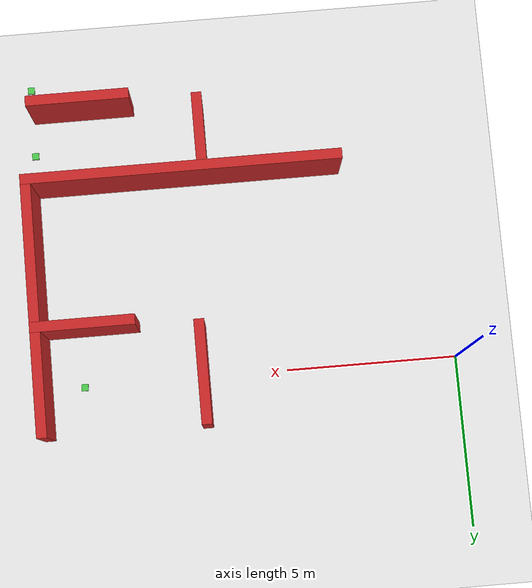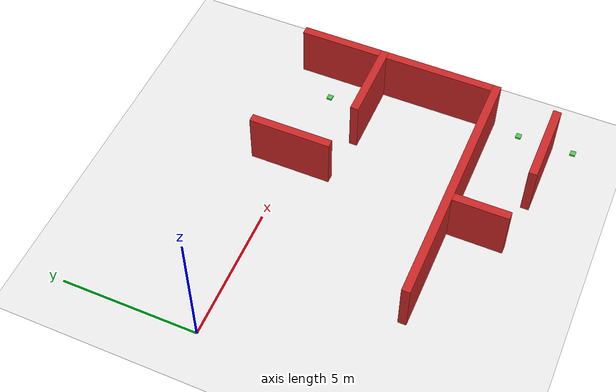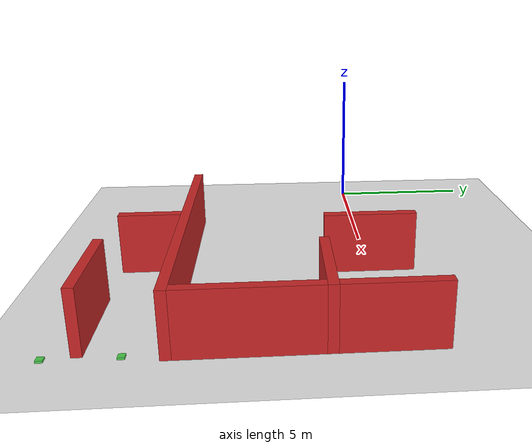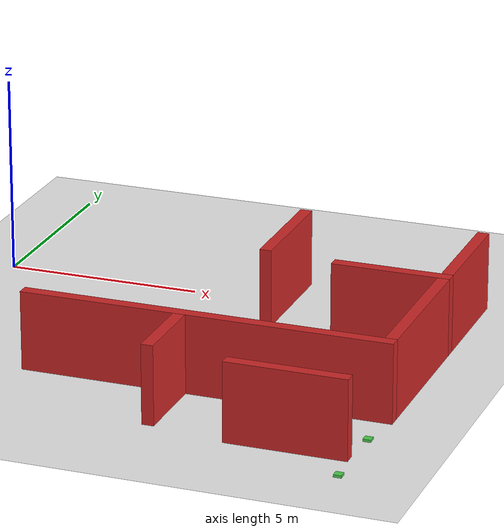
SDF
<sdf version="1.7">
 <world name="default">
  <model name="ground_plane">
   <static>1</static>
   <link name="link">
    <collision name="collision">
     <geometry><plane><normal>0 0 1</normal><size>100 100</size></plane></geometry>
     <surface>
      <contact><collide_bitmask>65535</collide_bitmask></contact>
      <friction><ode><mu>100</mu><mu2>50</mu2></ode></friction>
     </surface>
    </collision>
    <visual name="visual">
     <cast_shadows>0</cast_shadows>
     <geometry><plane><normal>0 0 1</normal><size>100 100</size></plane></geometry>
     <material>
      <script><uri>file://media/materials/scripts/gazebo.material</uri><name>Gazebo/White</name></script>
     </material>
    </visual>
   </link>
  </model>
  <model name="unit_box_clone_0">
   <link name="link">
    <inertial>
     <mass>1</mass>
     <inertia>
      <ixx>0.166667</ixx>
      <ixy>0</ixy>
      <ixz>0</ixz>
      <iyy>0.166667</iyy>
      <iyz>0</iyz>
      <izz>0.166667</izz>
     </inertia>
    </inertial>
    <visual name="visual">
     <geometry><box><size>0.3 3 2</size></box></geometry>
     <material>
      <script><name>Gazebo/Red</name><uri>file://media/materials/scripts/gazebo.material</uri></script>
      <shader type="pixel"><normal_map>__default__</normal_map></shader>
      <ambient>1 0 0 1</ambient>
      <diffuse>1 0 0 1</diffuse>
      <specular>0.1 0.1 0.1 1</specular>
      <emissive>0 0 0 1</emissive>
     </material>
    </visual>
    <collision name="collision">
     <geometry><box><size>0.3 3 2</size></box></geometry>
     <surface>
      <friction>
       <ode><mu>1</mu><mu2>1</mu2><fdir1>0 0 0</fdir1><slip1>0</slip1><slip2>0</slip2></ode>
       <torsional>
        <coefficient>1</coefficient>
        <patch_radius>0</patch_radius>
        <surface_radius>0</surface_radius>
        <use_patch_radius>1</use_patch_radius>
        <ode><slip>0</slip></ode>
       </torsional>
      </friction>
      <bounce><restitution_coefficient>0</restitution_coefficient><threshold>1e+06</threshold></bounce>
      <contact>
       <collide_without_contact>0</collide_without_contact>
       <collide_without_contact_bitmask>1</collide_without_contact_bitmask>
       <collide_bitmask>1</collide_bitmask>
       <ode>
        <soft_cfm>0</soft_cfm>
        <soft_erp>0.2</soft_erp>
        <kp>1e+13</kp>
        <kd>1</kd>
        <max_vel>0.01</max_vel>
        <min_depth>0</min_depth>
       </ode>
       <bullet>
        <split_impulse>1</split_impulse>
        <split_impulse_penetration_threshold>-0.01</split_impulse_penetration_threshold>
        <soft_cfm>0</soft_cfm>
        <soft_erp>0.2</soft_erp>
        <kp>1e+13</kp>
        <kd>1</kd>
       </bullet>
      </contact>
     </surface>
    </collision>
   </link>
   <static>1</static>
   <pose>7.45 0 1 1e-05 -0 0</pose>
  </model>
  <model name="unit_box_clone_0_clone">
   <link name="link">
    <inertial>
     <mass>1</mass>
     <inertia>
      <ixx>0.166667</ixx>
      <ixy>0</ixy>
      <ixz>0</ixz>
      <iyy>0.166667</iyy>
      <iyz>0</iyz>
      <izz>0.166667</izz>
     </inertia>
    </inertial>
    <visual name="visual">
     <geometry><box><size>0.3 3 2</size></box></geometry>
     <material>
      <script><name>Gazebo/Red</name><uri>file://media/materials/scripts/gazebo.material</uri></script>
      <shader type="pixel"><normal_map>__default__</normal_map></shader>
      <ambient>1 0 0 1</ambient>
      <diffuse>1 0 0 1</diffuse>
      <specular>0.1 0.1 0.1 1</specular>
      <emissive>0 0 0 1</emissive>
     </material>
    </visual>
    <collision name="collision">
     <geometry><box><size>0.3 3 2</size></box></geometry>
     <surface>
      <friction>
       <ode><mu>1</mu><mu2>1</mu2><fdir1>0 0 0</fdir1><slip1>0</slip1><slip2>0</slip2></ode>
       <torsional>
        <coefficient>1</coefficient>
        <patch_radius>0</patch_radius>
        <surface_radius>0</surface_radius>
        <use_patch_radius>1</use_patch_radius>
        <ode><slip>0</slip></ode>
       </torsional>
      </friction>
      <bounce><restitution_coefficient>0</restitution_coefficient><threshold>1e+06</threshold></bounce>
      <contact>
       <collide_without_contact>0</collide_without_contact>
       <collide_without_contact_bitmask>1</collide_without_contact_bitmask>
       <collide_bitmask>1</collide_bitmask>
       <ode>
        <soft_cfm>0</soft_cfm>
        <soft_erp>0.2</soft_erp>
        <kp>1e+13</kp>
        <kd>1</kd>
        <max_vel>0.01</max_vel>
        <min_depth>0</min_depth>
       </ode>
       <bullet>
        <split_impulse>1</split_impulse>
        <split_impulse_penetration_threshold>-0.01</split_impulse_penetration_threshold>
        <soft_cfm>0</soft_cfm>
        <soft_erp>0.2</soft_erp>
        <kp>1e+13</kp>
        <kd>1</kd>
       </bullet>
      </contact>
     </surface>
    </collision>
   </link>
   <static>1</static>
   <pose>12.1 0 1 1e-05 -0 0</pose>
  </model>
  <model name="unit_box_clone_1_clone">
   <link name="link">
    <inertial>
     <mass>1</mass>
     <inertia>
      <ixx>0.166667</ixx>
      <ixy>0</ixy>
      <ixz>0</ixz>
      <iyy>0.166667</iyy>
      <iyz>0</iyz>
      <izz>0.166667</izz>
     </inertia>
    </inertial>
    <visual name="visual">
     <geometry><box><size>0.3 4 2</size></box></geometry>
     <material>
      <script><name>Gazebo/Red</name><uri>file://media/materials/scripts/gazebo.material</uri></script>
      <shader type="pixel"><normal_map>__default__</normal_map></shader>
      <ambient>1 0 0 1</ambient>
      <diffuse>1 0 0 1</diffuse>
      <specular>0.1 0.1 0.1 1</specular>
      <emissive>0 0 0 1</emissive>
     </material>
    </visual>
    <collision name="collision">
     <geometry><box><size>0.3 4 2</size></box></geometry>
     <surface>
      <friction>
       <ode><mu>1</mu><mu2>1</mu2><fdir1>0 0 0</fdir1><slip1>0</slip1><slip2>0</slip2></ode>
       <torsional>
        <coefficient>1</coefficient>
        <patch_radius>0</patch_radius>
        <surface_radius>0</surface_radius>
        <use_patch_radius>1</use_patch_radius>
        <ode><slip>0</slip></ode>
       </torsional>
      </friction>
      <bounce><restitution_coefficient>0</restitution_coefficient><threshold>1e+06</threshold></bounce>
      <contact>
       <collide_without_contact>0</collide_without_contact>
       <collide_without_contact_bitmask>1</collide_without_contact_bitmask>
       <collide_bitmask>1</collide_bitmask>
       <ode>
        <soft_cfm>0</soft_cfm>
        <soft_erp>0.2</soft_erp>
        <kp>1e+13</kp>
        <kd>1</kd>
        <max_vel>0.01</max_vel>
        <min_depth>0</min_depth>
       </ode>
       <bullet>
        <split_impulse>1</split_impulse>
        <split_impulse_penetration_threshold>-0.01</split_impulse_penetration_threshold>
        <soft_cfm>0</soft_cfm>
        <soft_erp>0.2</soft_erp>
        <kp>1e+13</kp>
        <kd>1</kd>
       </bullet>
      </contact>
     </surface>
    </collision>
   </link>
   <static>1</static>
   <pose>12.1 -3.8 1 1e-05 -0 0</pose>
  </model>
  <model name="unit_box_clone_clone_clone_0_clone">
   <link name="link">
    <inertial>
     <mass>1</mass>
     <inertia>
      <ixx>0.166667</ixx>
      <ixy>0</ixy>
      <ixz>0</ixz>
      <iyy>0.166667</iyy>
      <iyz>0</iyz>
      <izz>0.166667</izz>
     </inertia>
    </inertial>
    <visual name="visual">
     <geometry><box><size>3 0.3 2</size></box></geometry>
     <material>
      <script><name>Gazebo/Red</name><uri>file://media/materials/scripts/gazebo.material</uri></script>
      <shader type="pixel"><normal_map>__default__</normal_map></shader>
      <ambient>1 0 0 1</ambient>
      <diffuse>1 0 0 1</diffuse>
      <specular>0.1 0.1 0.1 1</specular>
      <emissive>0 0 0 1</emissive>
     </material>
    </visual>
    <collision name="collision">
     <geometry><box><size>3 0.3 2</size></box></geometry>
     <surface>
      <friction>
       <ode><mu>1</mu><mu2>1</mu2><fdir1>0 0 0</fdir1><slip1>0</slip1><slip2>0</slip2></ode>
       <torsional>
        <coefficient>1</coefficient>
        <patch_radius>0</patch_radius>
        <surface_radius>0</surface_radius>
        <use_patch_radius>1</use_patch_radius>
        <ode><slip>0</slip></ode>
       </torsional>
      </friction>
      <bounce><restitution_coefficient>0</restitution_coefficient><threshold>1e+06</threshold></bounce>
      <contact>
       <collide_without_contact>0</collide_without_contact>
       <collide_without_contact_bitmask>1</collide_without_contact_bitmask>
       <collide_bitmask>1</collide_bitmask>
       <ode>
        <soft_cfm>0</soft_cfm>
        <soft_erp>0.2</soft_erp>
        <kp>1e+13</kp>
        <kd>1</kd>
        <max_vel>0.01</max_vel>
        <min_depth>0</min_depth>
       </ode>
       <bullet>
        <split_impulse>1</split_impulse>
        <split_impulse_penetration_threshold>-0.01</split_impulse_penetration_threshold>
        <soft_cfm>0</soft_cfm>
        <soft_erp>0.2</soft_erp>
        <kp>1e+13</kp>
        <kd>1</kd>
       </bullet>
      </contact>
     </surface>
    </collision>
   </link>
   <static>1</static>
   <pose>10.45 -8.25 1 0 -0 0</pose>
  </model>
  <model name="unit_box_clone_1_clone_clone_clone_0">
   <link name="link">
    <inertial>
     <mass>1</mass>
     <inertia>
      <ixx>0.166667</ixx>
      <ixy>0</ixy>
      <ixz>0</ixz>
      <iyy>0.166667</iyy>
      <iyz>0</iyz>
      <izz>0.166667</izz>
     </inertia>
    </inertial>
    <visual name="visual">
     <geometry><box><size>0.3 2 2</size></box></geometry>
     <material>
      <script><name>Gazebo/Red</name><uri>file://media/materials/scripts/gazebo.material</uri></script>
      <shader type="pixel"><normal_map>__default__</normal_map></shader>
      <ambient>1 0 0 1</ambient>
      <diffuse>1 0 0 1</diffuse>
      <specular>0.1 0.1 0.1 1</specular>
      <emissive>0 0 0 1</emissive>
     </material>
    </visual>
    <collision name="collision">
     <geometry><box><size>0.3 2 2</size></box></geometry>
     <surface>
      <friction>
       <ode><mu>1</mu><mu2>1</mu2><fdir1>0 0 0</fdir1><slip1>0</slip1><slip2>0</slip2></ode>
       <torsional>
        <coefficient>1</coefficient>
        <patch_radius>0</patch_radius>
        <surface_radius>0</surface_radius>
        <use_patch_radius>1</use_patch_radius>
        <ode><slip>0</slip></ode>
       </torsional>
      </friction>
      <bounce><restitution_coefficient>0</restitution_coefficient><threshold>1e+06</threshold></bounce>
      <contact>
       <collide_without_contact>0</collide_without_contact>
       <collide_without_contact_bitmask>1</collide_without_contact_bitmask>
       <collide_bitmask>1</collide_bitmask>
       <ode>
        <soft_cfm>0</soft_cfm>
        <soft_erp>0.2</soft_erp>
        <kp>1e+13</kp>
        <kd>1</kd>
        <max_vel>0.01</max_vel>
        <min_depth>0</min_depth>
       </ode>
       <bullet>
        <split_impulse>1</split_impulse>
        <split_impulse_penetration_threshold>-0.01</split_impulse_penetration_threshold>
        <soft_cfm>0</soft_cfm>
        <soft_erp>0.2</soft_erp>
        <kp>1e+13</kp>
        <kd>1</kd>
       </bullet>
      </contact>
     </surface>
    </collision>
   </link>
   <static>1</static>
   <pose>7 -7.1 1 1e-05 -0 0</pose>
  </model>
  <model name="unit_box_clone_clone_clone">
   <link name="link">
    <inertial>
     <mass>1</mass>
     <inertia>
      <ixx>0.166667</ixx>
      <ixy>0</ixy>
      <ixz>0</ixz>
      <iyy>0.166667</iyy>
      <iyz>0</iyz>
      <izz>0.166667</izz>
     </inertia>
    </inertial>
    <visual name="visual">
     <geometry><box><size>3 0.3 2</size></box></geometry>
     <material>
      <script><name>Gazebo/Red</name><uri>file://media/materials/scripts/gazebo.material</uri></script>
      <shader type="pixel"><normal_map>__default__</normal_map></shader>
      <ambient>1 0 0 1</ambient>
      <diffuse>1 0 0 1</diffuse>
      <specular>0.1 0.1 0.1 1</specular>
      <emissive>0 0 0 1</emissive>
     </material>
    </visual>
    <collision name="collision">
     <geometry><box><size>3 0.3 2</size></box></geometry>
     <surface>
      <friction>
       <ode><mu>1</mu><mu2>1</mu2><fdir1>0 0 0</fdir1><slip1>0</slip1><slip2>0</slip2></ode>
       <torsional>
        <coefficient>1</coefficient>
        <patch_radius>0</patch_radius>
        <surface_radius>0</surface_radius>
        <use_patch_radius>1</use_patch_radius>
        <ode><slip>0</slip></ode>
       </torsional>
      </friction>
      <bounce><restitution_coefficient>0</restitution_coefficient><threshold>1e+06</threshold></bounce>
      <contact>
       <collide_without_contact>0</collide_without_contact>
       <collide_without_contact_bitmask>1</collide_without_contact_bitmask>
       <collide_bitmask>1</collide_bitmask>
       <ode>
        <soft_cfm>0</soft_cfm>
        <soft_erp>0.2</soft_erp>
        <kp>1e+13</kp>
        <kd>1</kd>
        <max_vel>0.01</max_vel>
        <min_depth>0</min_depth>
       </ode>
       <bullet>
        <split_impulse>1</split_impulse>
        <split_impulse_penetration_threshold>-0.01</split_impulse_penetration_threshold>
        <soft_cfm>0</soft_cfm>
        <soft_erp>0.2</soft_erp>
        <kp>1e+13</kp>
        <kd>1</kd>
       </bullet>
      </contact>
     </surface>
    </collision>
   </link>
   <static>1</static>
   <pose>10.75 -1.65 1 1e-05 -0 0</pose>
  </model>
  <model name="unit_box_0">
   <link name="link">
    <inertial>
     <mass>1</mass>
     <inertia>
      <ixx>0.166667</ixx>
      <ixy>0</ixy>
      <ixz>0</ixz>
      <iyy>0.166667</iyy>
      <iyz>0</iyz>
      <izz>0.166667</izz>
     </inertia>
    </inertial>
    <visual name="visual">
     <geometry><box><size>0.2 0.2 0.1</size></box></geometry>
     <material>
      <script><name>Gazebo/Grey</name><uri>file://media/materials/scripts/gazebo.material</uri></script>
      <shader type="pixel"><normal_map>__default__</normal_map></shader>
      <ambient>0.3 0.8 0.3 1</ambient>
      <diffuse>0.7 0.7 0.7 1</diffuse>
      <specular>0.01 0.01 0.01 1</specular>
      <emissive>0 0 0 1</emissive>
     </material>
     <cast_shadows>0</cast_shadows>
    </visual>
   </link>
   <static>1</static>
   <pose>11 0 0 1e-05 -0 0</pose>
  </model>
  <model name="unit_box_1">
   <link name="link">
    <inertial>
     <mass>1</mass>
     <inertia>
      <ixx>0.166667</ixx>
      <ixy>0</ixy>
      <ixz>0</ixz>
      <iyy>0.166667</iyy>
      <iyz>0</iyz>
      <izz>0.166667</izz>
     </inertia>
    </inertial>
    <visual name="visual">
     <geometry><box><size>0.2 0.2 0.1</size></box></geometry>
     <material>
      <script><name>Gazebo/Grey</name><uri>file://media/materials/scripts/gazebo.material</uri></script>
      <shader type="pixel"><normal_map>__default__</normal_map></shader>
      <ambient>0.3 0.8 0.3 1</ambient>
      <diffuse>0.7 0.7 0.7 1</diffuse>
      <specular>0.01 0.01 0.01 1</specular>
      <emissive>0 0 0 1</emissive>
     </material>
     <cast_shadows>0</cast_shadows>
    </visual>
   </link>
   <static>1</static>
   <pose>12 -7.1 0 1e-05 -0 0</pose>
  </model>
  <model name="unit_box_1_clone">
   <link name="link">
    <inertial>
     <mass>1</mass>
     <inertia>
      <ixx>0.166667</ixx>
      <ixy>0</ixy>
      <ixz>0</ixz>
      <iyy>0.166667</iyy>
      <iyz>0</iyz>
      <izz>0.166667</izz>
     </inertia>
    </inertial>
    <visual name="visual">
     <geometry><box><size>0.2 0.2 0.1</size></box></geometry>
     <material>
      <script><name>Gazebo/Grey</name><uri>file://media/materials/scripts/gazebo.material</uri></script>
      <shader type="pixel"><normal_map>__default__</normal_map></shader>
      <ambient>0.3 0.8 0.3 1</ambient>
      <diffuse>0.7 0.7 0.7 1</diffuse>
      <specular>0.01 0.01 0.01 1</specular>
      <emissive>0 0 0 1</emissive>
     </material>
     <cast_shadows>0</cast_shadows>
    </visual>
   </link>
   <static>1</static>
   <pose>12 -9.15 0 1e-05 -0 0</pose>
  </model>
  <model name="unit_box_clone_clone_0_clone">
   <link name="link">
    <inertial>
     <mass>1</mass>
     <inertia>
      <ixx>0.166667</ixx>
      <ixy>0</ixy>
      <ixz>0</ixz>
      <iyy>0.166667</iyy>
      <iyz>0</iyz>
      <izz>0.166667</izz>
     </inertia>
    </inertial>
    <visual name="visual">
     <geometry><box><size>9.3 0.3 2</size></box></geometry>
     <material>
      <script><name>Gazebo/Red</name><uri>file://media/materials/scripts/gazebo.material</uri></script>
      <shader type="pixel"><normal_map>__default__</normal_map></shader>
      <ambient>1 0 0 1</ambient>
      <diffuse>1 0 0 1</diffuse>
      <specular>0.1 0.1 0.1 1</specular>
      <emissive>0 0 0 1</emissive>
     </material>
    </visual>
    <collision name="collision">
     <geometry><box><size>9.3 0.25 2</size></box></geometry>
     <surface>
      <friction>
       <ode><mu>1</mu><mu2>1</mu2><fdir1>0 0 0</fdir1><slip1>0</slip1><slip2>0</slip2></ode>
       <torsional>
        <coefficient>1</coefficient>
        <patch_radius>0</patch_radius>
        <surface_radius>0</surface_radius>
        <use_patch_radius>1</use_patch_radius>
        <ode><slip>0</slip></ode>
       </torsional>
      </friction>
      <bounce><restitution_coefficient>0</restitution_coefficient><threshold>1e+06</threshold></bounce>
      <contact>
       <collide_without_contact>0</collide_without_contact>
       <collide_without_contact_bitmask>1</collide_without_contact_bitmask>
       <collide_bitmask>1</collide_bitmask>
       <ode>
        <soft_cfm>0</soft_cfm>
        <soft_erp>0.2</soft_erp>
        <kp>1e+13</kp>
        <kd>1</kd>
        <max_vel>0.01</max_vel>
        <min_depth>0</min_depth>
       </ode>
       <bullet>
        <split_impulse>1</split_impulse>
        <split_impulse_penetration_threshold>-0.01</split_impulse_penetration_threshold>
        <soft_cfm>0</soft_cfm>
        <soft_erp>0.2</soft_erp>
        <kp>1e+13</kp>
        <kd>1</kd>
       </bullet>
      </contact>
     </surface>
    </collision>
   </link>
   <static>1</static>
   <pose>7.6 -5.95 1 1e-05 -0 0</pose>
  </model>
 </world>
</sdf>
